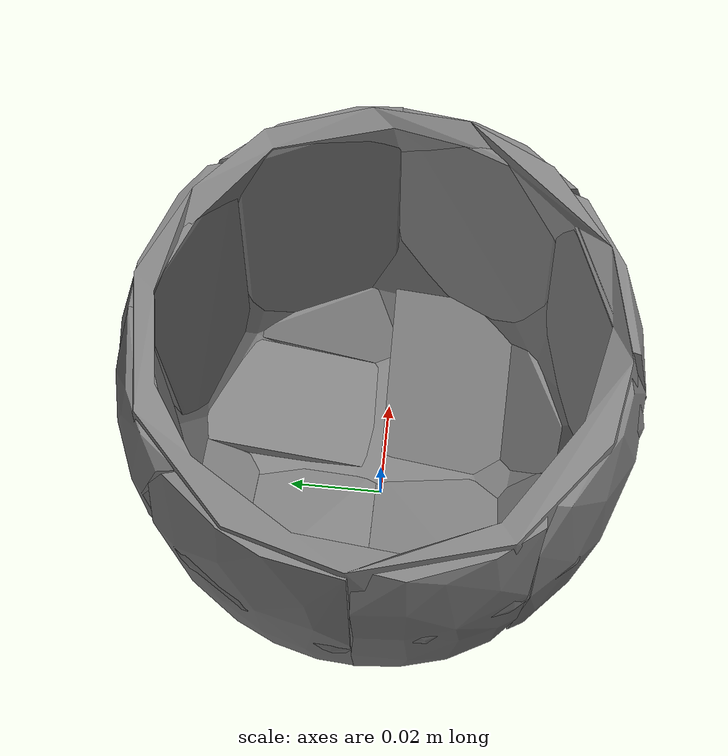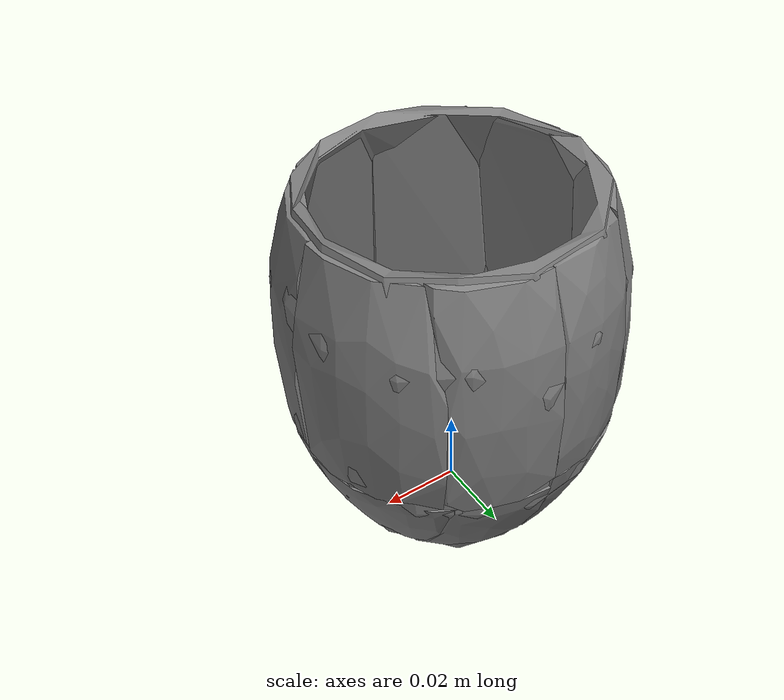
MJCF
<mujoco model="glass4">
  <asset>
    <mesh file="../../meshes/train/glass4/simple_mesh.stl" name="glass4_mesh" scale="1 1 1"/>
    <mesh file="../../meshes/train/glass4/glass4_hull_1.stl" name="glass4_hull_mesh_1" scale="1 1 1"/>
    <mesh file="../../meshes/train/glass4/glass4_hull_2.stl" name="glass4_hull_mesh_2" scale="1 1 1"/>
    <mesh file="../../meshes/train/glass4/glass4_hull_3.stl" name="glass4_hull_mesh_3" scale="1 1 1"/>
    <mesh file="../../meshes/train/glass4/glass4_hull_4.stl" name="glass4_hull_mesh_4" scale="1 1 1"/>
    <mesh file="../../meshes/train/glass4/glass4_hull_5.stl" name="glass4_hull_mesh_5" scale="1 1 1"/>
    <mesh file="../../meshes/train/glass4/glass4_hull_6.stl" name="glass4_hull_mesh_6" scale="1 1 1"/>
    <mesh file="../../meshes/train/glass4/glass4_hull_7.stl" name="glass4_hull_mesh_7" scale="1 1 1"/>
    <mesh file="../../meshes/train/glass4/glass4_hull_8.stl" name="glass4_hull_mesh_8" scale="1 1 1"/>
    <mesh file="../../meshes/train/glass4/glass4_hull_9.stl" name="glass4_hull_mesh_9" scale="1 1 1"/>
    <mesh file="../../meshes/train/glass4/glass4_hull_10.stl" name="glass4_hull_mesh_10" scale="1 1 1"/>
    <mesh file="../../meshes/train/glass4/glass4_hull_11.stl" name="glass4_hull_mesh_11" scale="1 1 1"/>
    <mesh file="../../meshes/train/glass4/glass4_hull_12.stl" name="glass4_hull_mesh_12" scale="1 1 1"/>
    <mesh file="../../meshes/train/glass4/glass4_hull_13.stl" name="glass4_hull_mesh_13" scale="1 1 1"/>
    <mesh file="../../meshes/train/glass4/glass4_hull_14.stl" name="glass4_hull_mesh_14" scale="1 1 1"/>
    <mesh file="../../meshes/train/glass4/glass4_hull_15.stl" name="glass4_hull_mesh_15" scale="1 1 1"/>
    <mesh file="../../meshes/train/glass4/glass4_hull_16.stl" name="glass4_hull_mesh_16" scale="1 1 1"/>
  </asset>
  <worldbody>
    <body>
      <body name="object">
        <geom pos="0 0 0" mesh="glass4_mesh" type="mesh" contype="0" conaffinity="0" group="1"/>
        <geom pos="0 0 0" mesh="glass4_hull_mesh_1" type="mesh" margin="0.001" solimp="0.998 0.998 0.001" solref="0.001 1" density="2000" friction="0.95 0.3 0.1" group="0" condim="4"/>
        <geom pos="0 0 0" mesh="glass4_hull_mesh_2" type="mesh" margin="0.001" solimp="0.998 0.998 0.001" solref="0.001 1" density="2000" friction="0.95 0.3 0.1" group="0" condim="4"/>
        <geom pos="0 0 0" mesh="glass4_hull_mesh_3" type="mesh" margin="0.001" solimp="0.998 0.998 0.001" solref="0.001 1" density="2000" friction="0.95 0.3 0.1" group="0" condim="4"/>
        <geom pos="0 0 0" mesh="glass4_hull_mesh_4" type="mesh" margin="0.001" solimp="0.998 0.998 0.001" solref="0.001 1" density="2000" friction="0.95 0.3 0.1" group="0" condim="4"/>
        <geom pos="0 0 0" mesh="glass4_hull_mesh_5" type="mesh" margin="0.001" solimp="0.998 0.998 0.001" solref="0.001 1" density="2000" friction="0.95 0.3 0.1" group="0" condim="4"/>
        <geom pos="0 0 0" mesh="glass4_hull_mesh_6" type="mesh" margin="0.001" solimp="0.998 0.998 0.001" solref="0.001 1" density="2000" friction="0.95 0.3 0.1" group="0" condim="4"/>
        <geom pos="0 0 0" mesh="glass4_hull_mesh_7" type="mesh" margin="0.001" solimp="0.998 0.998 0.001" solref="0.001 1" density="2000" friction="0.95 0.3 0.1" group="0" condim="4"/>
        <geom pos="0 0 0" mesh="glass4_hull_mesh_8" type="mesh" margin="0.001" solimp="0.998 0.998 0.001" solref="0.001 1" density="2000" friction="0.95 0.3 0.1" group="0" condim="4"/>
        <geom pos="0 0 0" mesh="glass4_hull_mesh_9" type="mesh" margin="0.001" solimp="0.998 0.998 0.001" solref="0.001 1" density="2000" friction="0.95 0.3 0.1" group="0" condim="4"/>
        <geom pos="0 0 0" mesh="glass4_hull_mesh_10" type="mesh" margin="0.001" solimp="0.998 0.998 0.001" solref="0.001 1" density="2000" friction="0.95 0.3 0.1" group="0" condim="4"/>
        <geom pos="0 0 0" mesh="glass4_hull_mesh_11" type="mesh" margin="0.001" solimp="0.998 0.998 0.001" solref="0.001 1" density="2000" friction="0.95 0.3 0.1" group="0" condim="4"/>
        <geom pos="0 0 0" mesh="glass4_hull_mesh_12" type="mesh" margin="0.001" solimp="0.998 0.998 0.001" solref="0.001 1" density="2000" friction="0.95 0.3 0.1" group="0" condim="4"/>
        <geom pos="0 0 0" mesh="glass4_hull_mesh_13" type="mesh" margin="0.001" solimp="0.998 0.998 0.001" solref="0.001 1" density="2000" friction="0.95 0.3 0.1" group="0" condim="4"/>
        <geom pos="0 0 0" mesh="glass4_hull_mesh_14" type="mesh" margin="0.001" solimp="0.998 0.998 0.001" solref="0.001 1" density="2000" friction="0.95 0.3 0.1" group="0" condim="4"/>
        <geom pos="0 0 0" mesh="glass4_hull_mesh_15" type="mesh" margin="0.001" solimp="0.998 0.998 0.001" solref="0.001 1" density="2000" friction="0.95 0.3 0.1" group="0" condim="4"/>
        <geom pos="0 0 0" mesh="glass4_hull_mesh_16" type="mesh" margin="0.001" solimp="0.998 0.998 0.001" solref="0.001 1" density="2000" friction="0.95 0.3 0.1" group="0" condim="4"/>
      </body>
      <site rgba="0 0 0 0" size="0.005" pos="0 0 -0.001" name="bottom_site"/>
      <site rgba="0 0 0 0" size="0.005" pos="0.0375 0.02 0" name="horizontal_radius_site"/>
    </body>
  </worldbody>
</mujoco>
